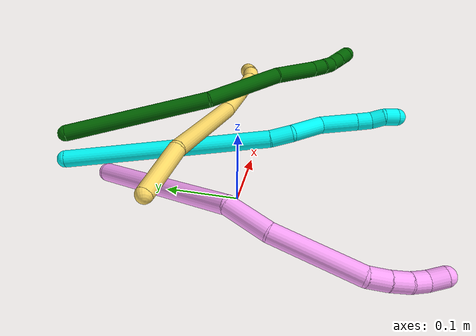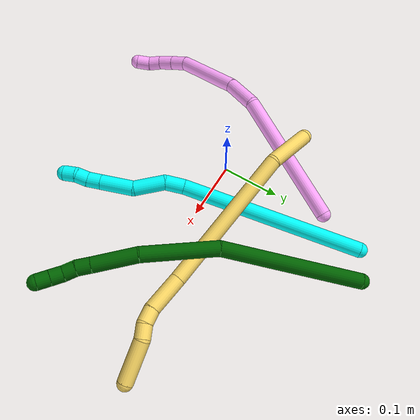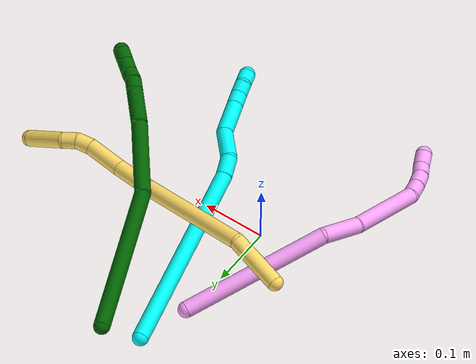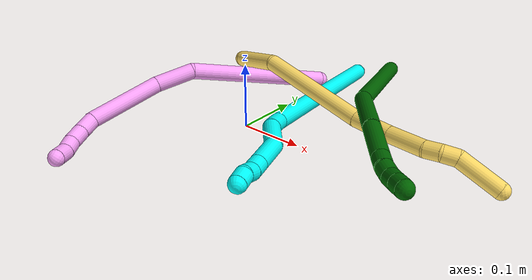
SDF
<sdf version="1.7">
 <world name="default">
  <model name="3">
   <static>0</static>
   <link name="3">
    <collision name="collision-cylinder-e_1_1_4">
     <pose>0.005342 -0.062137 -0.136666 2.71487 0.035568 0.163812</pose>
     <geometry><cylinder><radius>0.0125</radius><length>0.300447</length></cylinder></geometry>
     <surface>
      <friction><ode><mu>1.16</mu><mu2>1.16</mu2><slip1>0</slip1><slip2>0</slip2></ode></friction>
      <contact><ode><kp>1e+06</kp><kd>1</kd><max_vel>0</max_vel><min_depth>0.001</min_depth></ode></contact>
     </surface>
    </collision>
    <visual name="visual-cylinder-e_1_1_4">
     <pose>0.005342 -0.062137 -0.136666 2.71487 0.035568 0.163812</pose>
     <geometry><cylinder><radius>0.0125</radius><length>0.300447</length></cylinder></geometry>
     <material><ambient>0.003922 1 0.996078 1</ambient></material>
    </visual>
    <collision name="collision-cylinder-e_2_4_5">
     <pose>0.013796 -0.129542 -0.28804 2.79768 0.196601 1.03289</pose>
     <geometry><cylinder><radius>0.0125</radius><length>0.031862</length></cylinder></geometry>
     <surface>
      <friction><ode><mu>1.16</mu><mu2>1.16</mu2><slip1>0</slip1><slip2>0</slip2></ode></friction>
      <contact><ode><kp>1e+06</kp><kd>1</kd><max_vel>0</max_vel><min_depth>0.001</min_depth></ode></contact>
     </surface>
    </collision>
    <visual name="visual-cylinder-e_2_4_5">
     <pose>0.013796 -0.129542 -0.28804 2.79768 0.196601 1.03289</pose>
     <geometry><cylinder><radius>0.0125</radius><length>0.031862</length></cylinder></geometry>
     <material><ambient>0.003922 1 0.996078 1</ambient></material>
    </visual>
    <collision name="collision-cylinder-e_3_5_6">
     <pose>0.023759 -0.132637 -0.327478 -3.05394 0.26931 -2.51546</pose>
     <geometry><cylinder><radius>0.0125</radius><length>0.051503</length></cylinder></geometry>
     <surface>
      <friction><ode><mu>1.16</mu><mu2>1.16</mu2><slip1>0</slip1><slip2>0</slip2></ode></friction>
      <contact><ode><kp>1e+06</kp><kd>1</kd><max_vel>0</max_vel><min_depth>0.001</min_depth></ode></contact>
     </surface>
    </collision>
    <visual name="visual-cylinder-e_3_5_6">
     <pose>0.023759 -0.132637 -0.327478 -3.05394 0.26931 -2.51546</pose>
     <geometry><cylinder><radius>0.0125</radius><length>0.051503</length></cylinder></geometry>
     <material><ambient>0.003922 1 0.996078 1</ambient></material>
    </visual>
    <collision name="collision-cylinder-e_4_6_7">
     <pose>0.031999 -0.137829 -0.378173 2.86521 0.051387 0.365434</pose>
     <geometry><cylinder><radius>0.0125</radius><length>0.054053</length></cylinder></geometry>
     <surface>
      <friction><ode><mu>1.16</mu><mu2>1.16</mu2><slip1>0</slip1><slip2>0</slip2></ode></friction>
      <contact><ode><kp>1e+06</kp><kd>1</kd><max_vel>0</max_vel><min_depth>0.001</min_depth></ode></contact>
     </surface>
    </collision>
    <visual name="visual-cylinder-e_4_6_7">
     <pose>0.031999 -0.137829 -0.378173 2.86521 0.051387 0.365434</pose>
     <geometry><cylinder><radius>0.0125</radius><length>0.054053</length></cylinder></geometry>
     <material><ambient>0.003922 1 0.996078 1</ambient></material>
    </visual>
    <collision name="collision-cylinder-e_5_7_8">
     <pose>0.034043 -0.148241 -0.414753 2.86209 0.05932 0.41573</pose>
     <geometry><cylinder><radius>0.0125</radius><length>0.022123</length></cylinder></geometry>
     <surface>
      <friction><ode><mu>1.16</mu><mu2>1.16</mu2><slip1>0</slip1><slip2>0</slip2></ode></friction>
      <contact><ode><kp>1e+06</kp><kd>1</kd><max_vel>0</max_vel><min_depth>0.001</min_depth></ode></contact>
     </surface>
    </collision>
    <visual name="visual-cylinder-e_5_7_8">
     <pose>0.034043 -0.148241 -0.414753 2.86209 0.05932 0.41573</pose>
     <geometry><cylinder><radius>0.0125</radius><length>0.022123</length></cylinder></geometry>
     <material><ambient>0.003922 1 0.996078 1</ambient></material>
    </visual>
    <collision name="collision-cylinder-e_6_8_9">
     <pose>0.036503 -0.156038 -0.433981 2.63761 0.181375 0.679046</pose>
     <geometry><cylinder><radius>0.0125</radius><length>0.020003</length></cylinder></geometry>
     <surface>
      <friction><ode><mu>1.16</mu><mu2>1.16</mu2><slip1>0</slip1><slip2>0</slip2></ode></friction>
      <contact><ode><kp>1e+06</kp><kd>1</kd><max_vel>0</max_vel><min_depth>0.001</min_depth></ode></contact>
     </surface>
    </collision>
    <visual name="visual-cylinder-e_6_8_9">
     <pose>0.036503 -0.156038 -0.433981 2.63761 0.181375 0.679046</pose>
     <geometry><cylinder><radius>0.0125</radius><length>0.020003</length></cylinder></geometry>
     <material><ambient>0.003922 1 0.996078 1</ambient></material>
    </visual>
    <collision name="collision-cylinder-e_7_9_2">
     <pose>0.038039 -0.162867 -0.452377 2.93226 -0.026848 -0.254204</pose>
     <geometry><cylinder><radius>0.0125</radius><length>0.020009</length></cylinder></geometry>
     <surface>
      <friction><ode><mu>1.16</mu><mu2>1.16</mu2><slip1>0</slip1><slip2>0</slip2></ode></friction>
      <contact><ode><kp>1e+06</kp><kd>1</kd><max_vel>0</max_vel><min_depth>0.001</min_depth></ode></contact>
     </surface>
    </collision>
    <visual name="visual-cylinder-e_7_9_2">
     <pose>0.038039 -0.162867 -0.452377 2.93226 -0.026848 -0.254204</pose>
     <geometry><cylinder><radius>0.0125</radius><length>0.020009</length></cylinder></geometry>
     <material><ambient>0.003922 1 0.996078 1</ambient></material>
    </visual>
    <collision name="collision-sphere-2">
     <pose>0.03777 -0.164945 -0.46216 0 -0 0</pose>
     <geometry><sphere><radius>0.0125</radius></sphere></geometry>
     <surface>
      <friction><ode><mu>1.16</mu><mu2>1.16</mu2><slip1>0</slip1><slip2>0</slip2></ode></friction>
      <contact><ode><kp>1e+06</kp><kd>1</kd><max_vel>0</max_vel><min_depth>0.001</min_depth></ode></contact>
     </surface>
    </collision>
    <visual name="visual-sphere-2">
     <pose>0.03777 -0.164945 -0.46216 0 -0 0</pose>
     <geometry><sphere><radius>0.0125</radius></sphere></geometry>
     <material><ambient>0.003922 1 0.996078 1</ambient></material>
    </visual>
    <collision name="collision-sphere-9">
     <pose>0.038307 -0.160789 -0.442595 0 -0 0</pose>
     <geometry><sphere><radius>0.0125</radius></sphere></geometry>
     <surface>
      <friction><ode><mu>1.16</mu><mu2>1.16</mu2><slip1>0</slip1><slip2>0</slip2></ode></friction>
      <contact><ode><kp>1e+06</kp><kd>1</kd><max_vel>0</max_vel><min_depth>0.001</min_depth></ode></contact>
     </surface>
    </collision>
    <visual name="visual-sphere-9">
     <pose>0.038307 -0.160789 -0.442595 0 -0 0</pose>
     <geometry><sphere><radius>0.0125</radius></sphere></geometry>
     <material><ambient>0.003922 1 0.996078 1</ambient></material>
    </visual>
    <collision name="collision-sphere-4">
     <pose>0.010684 -0.124274 -0.273331 0 -0 0</pose>
     <geometry><sphere><radius>0.0125</radius></sphere></geometry>
     <surface>
      <friction><ode><mu>1.16</mu><mu2>1.16</mu2><slip1>0</slip1><slip2>0</slip2></ode></friction>
      <contact><ode><kp>1e+06</kp><kd>1</kd><max_vel>0</max_vel><min_depth>0.001</min_depth></ode></contact>
     </surface>
    </collision>
    <visual name="visual-sphere-4">
     <pose>0.010684 -0.124274 -0.273331 0 -0 0</pose>
     <geometry><sphere><radius>0.0125</radius></sphere></geometry>
     <material><ambient>0.003922 1 0.996078 1</ambient></material>
    </visual>
    <collision name="collision-sphere-1">
     <geometry><sphere><radius>0.0125</radius></sphere></geometry>
     <surface>
      <friction><ode><mu>1.16</mu><mu2>1.16</mu2><slip1>0</slip1><slip2>0</slip2></ode></friction>
      <contact><ode><kp>1e+06</kp><kd>1</kd><max_vel>0</max_vel><min_depth>0.001</min_depth></ode></contact>
     </surface>
    </collision>
    <visual name="visual-sphere-1">
     <geometry><sphere><radius>0.0125</radius></sphere></geometry>
     <material><ambient>0.003922 1 0.996078 1</ambient></material>
    </visual>
    <collision name="collision-sphere-8">
     <pose>0.034699 -0.151287 -0.425366 0 -0 0</pose>
     <geometry><sphere><radius>0.0125</radius></sphere></geometry>
     <surface>
      <friction><ode><mu>1.16</mu><mu2>1.16</mu2><slip1>0</slip1><slip2>0</slip2></ode></friction>
      <contact><ode><kp>1e+06</kp><kd>1</kd><max_vel>0</max_vel><min_depth>0.001</min_depth></ode></contact>
     </surface>
    </collision>
    <visual name="visual-sphere-8">
     <pose>0.034699 -0.151287 -0.425366 0 -0 0</pose>
     <geometry><sphere><radius>0.0125</radius></sphere></geometry>
     <material><ambient>0.003922 1 0.996078 1</ambient></material>
    </visual>
    <collision name="collision-sphere-5">
     <pose>0.016908 -0.13481 -0.30275 0 -0 0</pose>
     <geometry><sphere><radius>0.0125</radius></sphere></geometry>
     <surface>
      <friction><ode><mu>1.16</mu><mu2>1.16</mu2><slip1>0</slip1><slip2>0</slip2></ode></friction>
      <contact><ode><kp>1e+06</kp><kd>1</kd><max_vel>0</max_vel><min_depth>0.001</min_depth></ode></contact>
     </surface>
    </collision>
    <visual name="visual-sphere-5">
     <pose>0.016908 -0.13481 -0.30275 0 -0 0</pose>
     <geometry><sphere><radius>0.0125</radius></sphere></geometry>
     <material><ambient>0.003922 1 0.996078 1</ambient></material>
    </visual>
    <collision name="collision-sphere-6">
     <pose>0.030611 -0.130464 -0.352206 0 -0 0</pose>
     <geometry><sphere><radius>0.0125</radius></sphere></geometry>
     <surface>
      <friction><ode><mu>1.16</mu><mu2>1.16</mu2><slip1>0</slip1><slip2>0</slip2></ode></friction>
      <contact><ode><kp>1e+06</kp><kd>1</kd><max_vel>0</max_vel><min_depth>0.001</min_depth></ode></contact>
     </surface>
    </collision>
    <visual name="visual-sphere-6">
     <pose>0.030611 -0.130464 -0.352206 0 -0 0</pose>
     <geometry><sphere><radius>0.0125</radius></sphere></geometry>
     <material><ambient>0.003922 1 0.996078 1</ambient></material>
    </visual>
    <collision name="collision-sphere-7">
     <pose>0.033387 -0.145195 -0.404139 0 -0 0</pose>
     <geometry><sphere><radius>0.0125</radius></sphere></geometry>
     <surface>
      <friction><ode><mu>1.16</mu><mu2>1.16</mu2><slip1>0</slip1><slip2>0</slip2></ode></friction>
      <contact><ode><kp>1e+06</kp><kd>1</kd><max_vel>0</max_vel><min_depth>0.001</min_depth></ode></contact>
     </surface>
    </collision>
    <visual name="visual-sphere-7">
     <pose>0.033387 -0.145195 -0.404139 0 -0 0</pose>
     <geometry><sphere><radius>0.0125</radius></sphere></geometry>
     <material><ambient>0.003922 1 0.996078 1</ambient></material>
    </visual>
    <inertial>
     <pose>0.014485 -0.093475 -0.228908 0 -0 0</pose>
     <mass>0.5</mass>
     <inertia>
      <ixx>0.002625</ixx>
      <ixy>0</ixy>
      <ixz>0</ixz>
      <iyy>-0.001683</iyy>
      <iyz>0</iyz>
      <izz>0.000823</izz>
     </inertia>
    </inertial>
   </link>
   <pose>0.024566 0.262877 0.0123 -1.28713 -0.881345 0.30374</pose>
  </model>
  <model name="4">
   <static>0</static>
   <link name="4">
    <collision name="collision-cylinder-e_1_1_4">
     <pose>-0.046482 -0.033493 0.097842 0.329816 -0.422413 -0.071332</pose>
     <geometry><cylinder><radius>0.0125</radius><length>0.226764</length></cylinder></geometry>
     <surface>
      <friction><ode><mu>1.16</mu><mu2>1.16</mu2><slip1>0</slip1><slip2>0</slip2></ode></friction>
      <contact><ode><kp>1e+06</kp><kd>1</kd><max_vel>0</max_vel><min_depth>0.001</min_depth></ode></contact>
     </surface>
    </collision>
    <visual name="visual-cylinder-e_1_1_4">
     <pose>-0.046482 -0.033493 0.097842 0.329816 -0.422413 -0.071332</pose>
     <geometry><cylinder><radius>0.0125</radius><length>0.226764</length></cylinder></geometry>
     <material><ambient>1 0.65098 0.996078 1</ambient></material>
    </visual>
    <collision name="collision-cylinder-e_2_4_5">
     <pose>-0.114289 -0.07915 0.213298 0.604353 -0.783494 -0.256135</pose>
     <geometry><cylinder><radius>0.0125</radius><length>0.060429</length></cylinder></geometry>
     <surface>
      <friction><ode><mu>1.16</mu><mu2>1.16</mu2><slip1>0</slip1><slip2>0</slip2></ode></friction>
      <contact><ode><kp>1e+06</kp><kd>1</kd><max_vel>0</max_vel><min_depth>0.001</min_depth></ode></contact>
     </surface>
    </collision>
    <visual name="visual-cylinder-e_2_4_5">
     <pose>-0.114289 -0.07915 0.213298 0.604353 -0.783494 -0.256135</pose>
     <geometry><cylinder><radius>0.0125</radius><length>0.060429</length></cylinder></geometry>
     <material><ambient>1 0.65098 0.996078 1</ambient></material>
    </visual>
    <collision name="collision-cylinder-e_3_5_6">
     <pose>-0.171925 -0.126406 0.258956 0.896594 -0.679799 -0.336931</pose>
     <geometry><cylinder><radius>0.0125</radius><length>0.115526</length></cylinder></geometry>
     <surface>
      <friction><ode><mu>1.16</mu><mu2>1.16</mu2><slip1>0</slip1><slip2>0</slip2></ode></friction>
      <contact><ode><kp>1e+06</kp><kd>1</kd><max_vel>0</max_vel><min_depth>0.001</min_depth></ode></contact>
     </surface>
    </collision>
    <visual name="visual-cylinder-e_3_5_6">
     <pose>-0.171925 -0.126406 0.258956 0.896594 -0.679799 -0.336931</pose>
     <geometry><cylinder><radius>0.0125</radius><length>0.115526</length></cylinder></geometry>
     <material><ambient>1 0.65098 0.996078 1</ambient></material>
    </visual>
    <collision name="collision-cylinder-e_4_6_7">
     <pose>-0.214003 -0.173306 0.290334 1.29552 -0.439359 -0.334745</pose>
     <geometry><cylinder><radius>0.0125</radius><length>0.02711</length></cylinder></geometry>
     <surface>
      <friction><ode><mu>1.16</mu><mu2>1.16</mu2><slip1>0</slip1><slip2>0</slip2></ode></friction>
      <contact><ode><kp>1e+06</kp><kd>1</kd><max_vel>0</max_vel><min_depth>0.001</min_depth></ode></contact>
     </surface>
    </collision>
    <visual name="visual-cylinder-e_4_6_7">
     <pose>-0.214003 -0.173306 0.290334 1.29552 -0.439359 -0.334745</pose>
     <geometry><cylinder><radius>0.0125</radius><length>0.02711</length></cylinder></geometry>
     <material><ambient>1 0.65098 0.996078 1</ambient></material>
    </visual>
    <collision name="collision-cylinder-e_5_7_8">
     <pose>-0.22399 -0.196565 0.296599 1.32031 -0.342986 -0.267316</pose>
     <geometry><cylinder><radius>0.0125</radius><length>0.025107</length></cylinder></geometry>
     <surface>
      <friction><ode><mu>1.16</mu><mu2>1.16</mu2><slip1>0</slip1><slip2>0</slip2></ode></friction>
      <contact><ode><kp>1e+06</kp><kd>1</kd><max_vel>0</max_vel><min_depth>0.001</min_depth></ode></contact>
     </surface>
    </collision>
    <visual name="visual-cylinder-e_5_7_8">
     <pose>-0.22399 -0.196565 0.296599 1.32031 -0.342986 -0.267316</pose>
     <geometry><cylinder><radius>0.0125</radius><length>0.025107</length></cylinder></geometry>
     <material><ambient>1 0.65098 0.996078 1</ambient></material>
    </visual>
    <collision name="collision-cylinder-e_6_8_9">
     <pose>-0.230244 -0.218521 0.300929 1.43835 -0.189493 -0.166038</pose>
     <geometry><cylinder><radius>0.0125</radius><length>0.021577</length></cylinder></geometry>
     <surface>
      <friction><ode><mu>1.16</mu><mu2>1.16</mu2><slip1>0</slip1><slip2>0</slip2></ode></friction>
      <contact><ode><kp>1e+06</kp><kd>1</kd><max_vel>0</max_vel><min_depth>0.001</min_depth></ode></contact>
     </surface>
    </collision>
    <visual name="visual-cylinder-e_6_8_9">
     <pose>-0.230244 -0.218521 0.300929 1.43835 -0.189493 -0.166038</pose>
     <geometry><cylinder><radius>0.0125</radius><length>0.021577</length></cylinder></geometry>
     <material><ambient>1 0.65098 0.996078 1</ambient></material>
    </visual>
    <collision name="collision-cylinder-e_7_9_2">
     <pose>-0.232782 -0.239923 0.306671 1.19164 -0.043016 -0.029168</pose>
     <geometry><cylinder><radius>0.0125</radius><length>0.023486</length></cylinder></geometry>
     <surface>
      <friction><ode><mu>1.16</mu><mu2>1.16</mu2><slip1>0</slip1><slip2>0</slip2></ode></friction>
      <contact><ode><kp>1e+06</kp><kd>1</kd><max_vel>0</max_vel><min_depth>0.001</min_depth></ode></contact>
     </surface>
    </collision>
    <visual name="visual-cylinder-e_7_9_2">
     <pose>-0.232782 -0.239923 0.306671 1.19164 -0.043016 -0.029168</pose>
     <geometry><cylinder><radius>0.0125</radius><length>0.023486</length></cylinder></geometry>
     <material><ambient>1 0.65098 0.996078 1</ambient></material>
    </visual>
    <collision name="collision-sphere-2">
     <pose>-0.233287 -0.250822 0.311013 0 -0 0</pose>
     <geometry><sphere><radius>0.0125</radius></sphere></geometry>
     <surface>
      <friction><ode><mu>1.16</mu><mu2>1.16</mu2><slip1>0</slip1><slip2>0</slip2></ode></friction>
      <contact><ode><kp>1e+06</kp><kd>1</kd><max_vel>0</max_vel><min_depth>0.001</min_depth></ode></contact>
     </surface>
    </collision>
    <visual name="visual-sphere-2">
     <pose>-0.233287 -0.250822 0.311013 0 -0 0</pose>
     <geometry><sphere><radius>0.0125</radius></sphere></geometry>
     <material><ambient>1 0.65098 0.996078 1</ambient></material>
    </visual>
    <collision name="collision-sphere-9">
     <pose>-0.232277 -0.229024 0.302328 0 -0 0</pose>
     <geometry><sphere><radius>0.0125</radius></sphere></geometry>
     <surface>
      <friction><ode><mu>1.16</mu><mu2>1.16</mu2><slip1>0</slip1><slip2>0</slip2></ode></friction>
      <contact><ode><kp>1e+06</kp><kd>1</kd><max_vel>0</max_vel><min_depth>0.001</min_depth></ode></contact>
     </surface>
    </collision>
    <visual name="visual-sphere-9">
     <pose>-0.232277 -0.229024 0.302328 0 -0 0</pose>
     <geometry><sphere><radius>0.0125</radius></sphere></geometry>
     <material><ambient>1 0.65098 0.996078 1</ambient></material>
    </visual>
    <collision name="collision-sphere-4">
     <pose>-0.092965 -0.066986 0.195684 0 -0 0</pose>
     <geometry><sphere><radius>0.0125</radius></sphere></geometry>
     <surface>
      <friction><ode><mu>1.16</mu><mu2>1.16</mu2><slip1>0</slip1><slip2>0</slip2></ode></friction>
      <contact><ode><kp>1e+06</kp><kd>1</kd><max_vel>0</max_vel><min_depth>0.001</min_depth></ode></contact>
     </surface>
    </collision>
    <visual name="visual-sphere-4">
     <pose>-0.092965 -0.066986 0.195684 0 -0 0</pose>
     <geometry><sphere><radius>0.0125</radius></sphere></geometry>
     <material><ambient>1 0.65098 0.996078 1</ambient></material>
    </visual>
    <collision name="collision-sphere-1">
     <geometry><sphere><radius>0.0125</radius></sphere></geometry>
     <surface>
      <friction><ode><mu>1.16</mu><mu2>1.16</mu2><slip1>0</slip1><slip2>0</slip2></ode></friction>
      <contact><ode><kp>1e+06</kp><kd>1</kd><max_vel>0</max_vel><min_depth>0.001</min_depth></ode></contact>
     </surface>
    </collision>
    <visual name="visual-sphere-1">
     <geometry><sphere><radius>0.0125</radius></sphere></geometry>
     <material><ambient>1 0.65098 0.996078 1</ambient></material>
    </visual>
    <collision name="collision-sphere-8">
     <pose>-0.228212 -0.208018 0.29953 0 -0 0</pose>
     <geometry><sphere><radius>0.0125</radius></sphere></geometry>
     <surface>
      <friction><ode><mu>1.16</mu><mu2>1.16</mu2><slip1>0</slip1><slip2>0</slip2></ode></friction>
      <contact><ode><kp>1e+06</kp><kd>1</kd><max_vel>0</max_vel><min_depth>0.001</min_depth></ode></contact>
     </surface>
    </collision>
    <visual name="visual-sphere-8">
     <pose>-0.228212 -0.208018 0.29953 0 -0 0</pose>
     <geometry><sphere><radius>0.0125</radius></sphere></geometry>
     <material><ambient>1 0.65098 0.996078 1</ambient></material>
    </visual>
    <collision name="collision-sphere-5">
     <pose>-0.135613 -0.091313 0.230912 0 -0 0</pose>
     <geometry><sphere><radius>0.0125</radius></sphere></geometry>
     <surface>
      <friction><ode><mu>1.16</mu><mu2>1.16</mu2><slip1>0</slip1><slip2>0</slip2></ode></friction>
      <contact><ode><kp>1e+06</kp><kd>1</kd><max_vel>0</max_vel><min_depth>0.001</min_depth></ode></contact>
     </surface>
    </collision>
    <visual name="visual-sphere-5">
     <pose>-0.135613 -0.091313 0.230912 0 -0 0</pose>
     <geometry><sphere><radius>0.0125</radius></sphere></geometry>
     <material><ambient>1 0.65098 0.996078 1</ambient></material>
    </visual>
    <collision name="collision-sphere-6">
     <pose>-0.208237 -0.1615 0.287 0 -0 0</pose>
     <geometry><sphere><radius>0.0125</radius></sphere></geometry>
     <surface>
      <friction><ode><mu>1.16</mu><mu2>1.16</mu2><slip1>0</slip1><slip2>0</slip2></ode></friction>
      <contact><ode><kp>1e+06</kp><kd>1</kd><max_vel>0</max_vel><min_depth>0.001</min_depth></ode></contact>
     </surface>
    </collision>
    <visual name="visual-sphere-6">
     <pose>-0.208237 -0.1615 0.287 0 -0 0</pose>
     <geometry><sphere><radius>0.0125</radius></sphere></geometry>
     <material><ambient>1 0.65098 0.996078 1</ambient></material>
    </visual>
    <collision name="collision-sphere-7">
     <pose>-0.219769 -0.185112 0.293669 0 -0 0</pose>
     <geometry><sphere><radius>0.0125</radius></sphere></geometry>
     <surface>
      <friction><ode><mu>1.16</mu><mu2>1.16</mu2><slip1>0</slip1><slip2>0</slip2></ode></friction>
      <contact><ode><kp>1e+06</kp><kd>1</kd><max_vel>0</max_vel><min_depth>0.001</min_depth></ode></contact>
     </surface>
    </collision>
    <visual name="visual-sphere-7">
     <pose>-0.219769 -0.185112 0.293669 0 -0 0</pose>
     <geometry><sphere><radius>0.0125</radius></sphere></geometry>
     <material><ambient>1 0.65098 0.996078 1</ambient></material>
    </visual>
    <inertial>
     <pose>-0.118339 -0.093929 0.188012 0 -0 0</pose>
     <mass>0.5</mass>
     <inertia>
      <ixx>0.00089</ixx>
      <ixy>0</ixy>
      <ixz>0</ixz>
      <iyy>0.000933</iyy>
      <iyz>0</iyz>
      <izz>0.000914</izz>
     </inertia>
    </inertial>
   </link>
   <pose>-0.000274 0.185574 0.016441 0.16664 -0.853446 0.621703</pose>
  </model>
  <model name="5">
   <static>0</static>
   <link name="5">
    <collision name="collision-cylinder-e_1_1_4">
     <pose>0.017398 -0.008348 0.037607 0.218444 0.424216 0.047221</pose>
     <geometry><cylinder><radius>0.0125</radius><length>0.084539</length></cylinder></geometry>
     <surface>
      <friction><ode><mu>1.16</mu><mu2>1.16</mu2><slip1>0</slip1><slip2>0</slip2></ode></friction>
      <contact><ode><kp>1e+06</kp><kd>1</kd><max_vel>0</max_vel><min_depth>0.001</min_depth></ode></contact>
     </surface>
    </collision>
    <visual name="visual-cylinder-e_1_1_4">
     <pose>0.017398 -0.008348 0.037607 0.218444 0.424216 0.047221</pose>
     <geometry><cylinder><radius>0.0125</radius><length>0.084539</length></cylinder></geometry>
     <material><ambient>1 0.858824 0.4 1</ambient></material>
    </visual>
    <collision name="collision-cylinder-e_2_4_5">
     <pose>0.086686 -0.001981 0.148794 -0.197395 0.605016 -0.061785</pose>
     <geometry><cylinder><radius>0.0125</radius><length>0.182461</length></cylinder></geometry>
     <surface>
      <friction><ode><mu>1.16</mu><mu2>1.16</mu2><slip1>0</slip1><slip2>0</slip2></ode></friction>
      <contact><ode><kp>1e+06</kp><kd>1</kd><max_vel>0</max_vel><min_depth>0.001</min_depth></ode></contact>
     </surface>
    </collision>
    <visual name="visual-cylinder-e_2_4_5">
     <pose>0.086686 -0.001981 0.148794 -0.197395 0.605016 -0.061785</pose>
     <geometry><cylinder><radius>0.0125</radius><length>0.182461</length></cylinder></geometry>
     <material><ambient>1 0.858824 0.4 1</ambient></material>
    </visual>
    <collision name="collision-cylinder-e_3_5_6">
     <pose>0.153277 0.014903 0.249151 -0.080772 0.500704 -0.020665</pose>
     <geometry><cylinder><radius>0.0125</radius><length>0.06125</length></cylinder></geometry>
     <surface>
      <friction><ode><mu>1.16</mu><mu2>1.16</mu2><slip1>0</slip1><slip2>0</slip2></ode></friction>
      <contact><ode><kp>1e+06</kp><kd>1</kd><max_vel>0</max_vel><min_depth>0.001</min_depth></ode></contact>
     </surface>
    </collision>
    <visual name="visual-cylinder-e_3_5_6">
     <pose>0.153277 0.014903 0.249151 -0.080772 0.500704 -0.020665</pose>
     <geometry><cylinder><radius>0.0125</radius><length>0.06125</length></cylinder></geometry>
     <material><ambient>1 0.858824 0.4 1</ambient></material>
    </visual>
    <collision name="collision-cylinder-e_4_6_7">
     <pose>0.181633 0.017647 0.301977 -0.022156 0.482734 -0.005454</pose>
     <geometry><cylinder><radius>0.0125</radius><length>0.058831</length></cylinder></geometry>
     <surface>
      <friction><ode><mu>1.16</mu><mu2>1.16</mu2><slip1>0</slip1><slip2>0</slip2></ode></friction>
      <contact><ode><kp>1e+06</kp><kd>1</kd><max_vel>0</max_vel><min_depth>0.001</min_depth></ode></contact>
     </surface>
    </collision>
    <visual name="visual-cylinder-e_4_6_7">
     <pose>0.181633 0.017647 0.301977 -0.022156 0.482734 -0.005454</pose>
     <geometry><cylinder><radius>0.0125</radius><length>0.058831</length></cylinder></geometry>
     <material><ambient>1 0.858824 0.4 1</ambient></material>
    </visual>
    <collision name="collision-cylinder-e_5_7_8">
     <pose>0.198356 0.020118 0.339297 -0.166404 0.262246 -0.021995</pose>
     <geometry><cylinder><radius>0.0125</radius><length>0.023671</length></cylinder></geometry>
     <surface>
      <friction><ode><mu>1.16</mu><mu2>1.16</mu2><slip1>0</slip1><slip2>0</slip2></ode></friction>
      <contact><ode><kp>1e+06</kp><kd>1</kd><max_vel>0</max_vel><min_depth>0.001</min_depth></ode></contact>
     </surface>
    </collision>
    <visual name="visual-cylinder-e_5_7_8">
     <pose>0.198356 0.020118 0.339297 -0.166404 0.262246 -0.021995</pose>
     <geometry><cylinder><radius>0.0125</radius><length>0.023671</length></cylinder></geometry>
     <material><ambient>1 0.858824 0.4 1</ambient></material>
    </visual>
    <collision name="collision-cylinder-e_6_8_9">
     <pose>0.202919 0.027436 0.360277 -0.509576 0.133588 -0.034841</pose>
     <geometry><cylinder><radius>0.0125</radius><length>0.022439</length></cylinder></geometry>
     <surface>
      <friction><ode><mu>1.16</mu><mu2>1.16</mu2><slip1>0</slip1><slip2>0</slip2></ode></friction>
      <contact><ode><kp>1e+06</kp><kd>1</kd><max_vel>0</max_vel><min_depth>0.001</min_depth></ode></contact>
     </surface>
    </collision>
    <visual name="visual-cylinder-e_6_8_9">
     <pose>0.202919 0.027436 0.360277 -0.509576 0.133588 -0.034841</pose>
     <geometry><cylinder><radius>0.0125</radius><length>0.022439</length></cylinder></geometry>
     <material><ambient>1 0.858824 0.4 1</ambient></material>
    </visual>
    <collision name="collision-cylinder-e_7_9_2">
     <pose>0.22044 0.049978 0.393775 -0.623705 0.500386 -0.164391</pose>
     <geometry><cylinder><radius>0.0125</radius><length>0.066809</length></cylinder></geometry>
     <surface>
      <friction><ode><mu>1.16</mu><mu2>1.16</mu2><slip1>0</slip1><slip2>0</slip2></ode></friction>
      <contact><ode><kp>1e+06</kp><kd>1</kd><max_vel>0</max_vel><min_depth>0.001</min_depth></ode></contact>
     </surface>
    </collision>
    <visual name="visual-cylinder-e_7_9_2">
     <pose>0.22044 0.049978 0.393775 -0.623705 0.500386 -0.164391</pose>
     <geometry><cylinder><radius>0.0125</radius><length>0.066809</length></cylinder></geometry>
     <material><ambient>1 0.858824 0.4 1</ambient></material>
    </visual>
    <collision name="collision-sphere-2">
     <pose>0.236466 0.067096 0.417566 0 -0 0</pose>
     <geometry><sphere><radius>0.0125</radius></sphere></geometry>
     <surface>
      <friction><ode><mu>1.16</mu><mu2>1.16</mu2><slip1>0</slip1><slip2>0</slip2></ode></friction>
      <contact><ode><kp>1e+06</kp><kd>1</kd><max_vel>0</max_vel><min_depth>0.001</min_depth></ode></contact>
     </surface>
    </collision>
    <visual name="visual-sphere-2">
     <pose>0.236466 0.067096 0.417566 0 -0 0</pose>
     <geometry><sphere><radius>0.0125</radius></sphere></geometry>
     <material><ambient>1 0.858824 0.4 1</ambient></material>
    </visual>
    <collision name="collision-sphere-9">
     <pose>0.204413 0.03286 0.369984 0 -0 0</pose>
     <geometry><sphere><radius>0.0125</radius></sphere></geometry>
     <surface>
      <friction><ode><mu>1.16</mu><mu2>1.16</mu2><slip1>0</slip1><slip2>0</slip2></ode></friction>
      <contact><ode><kp>1e+06</kp><kd>1</kd><max_vel>0</max_vel><min_depth>0.001</min_depth></ode></contact>
     </surface>
    </collision>
    <visual name="visual-sphere-9">
     <pose>0.204413 0.03286 0.369984 0 -0 0</pose>
     <geometry><sphere><radius>0.0125</radius></sphere></geometry>
     <material><ambient>1 0.858824 0.4 1</ambient></material>
    </visual>
    <collision name="collision-sphere-4">
     <pose>0.034797 -0.016697 0.075215 0 -0 0</pose>
     <geometry><sphere><radius>0.0125</radius></sphere></geometry>
     <surface>
      <friction><ode><mu>1.16</mu><mu2>1.16</mu2><slip1>0</slip1><slip2>0</slip2></ode></friction>
      <contact><ode><kp>1e+06</kp><kd>1</kd><max_vel>0</max_vel><min_depth>0.001</min_depth></ode></contact>
     </surface>
    </collision>
    <visual name="visual-sphere-4">
     <pose>0.034797 -0.016697 0.075215 0 -0 0</pose>
     <geometry><sphere><radius>0.0125</radius></sphere></geometry>
     <material><ambient>1 0.858824 0.4 1</ambient></material>
    </visual>
    <collision name="collision-sphere-1">
     <geometry><sphere><radius>0.0125</radius></sphere></geometry>
     <surface>
      <friction><ode><mu>1.16</mu><mu2>1.16</mu2><slip1>0</slip1><slip2>0</slip2></ode></friction>
      <contact><ode><kp>1e+06</kp><kd>1</kd><max_vel>0</max_vel><min_depth>0.001</min_depth></ode></contact>
     </surface>
    </collision>
    <visual name="visual-sphere-1">
     <geometry><sphere><radius>0.0125</radius></sphere></geometry>
     <material><ambient>1 0.858824 0.4 1</ambient></material>
    </visual>
    <collision name="collision-sphere-8">
     <pose>0.201425 0.022011 0.35057 0 -0 0</pose>
     <geometry><sphere><radius>0.0125</radius></sphere></geometry>
     <surface>
      <friction><ode><mu>1.16</mu><mu2>1.16</mu2><slip1>0</slip1><slip2>0</slip2></ode></friction>
      <contact><ode><kp>1e+06</kp><kd>1</kd><max_vel>0</max_vel><min_depth>0.001</min_depth></ode></contact>
     </surface>
    </collision>
    <visual name="visual-sphere-8">
     <pose>0.201425 0.022011 0.35057 0 -0 0</pose>
     <geometry><sphere><radius>0.0125</radius></sphere></geometry>
     <material><ambient>1 0.858824 0.4 1</ambient></material>
    </visual>
    <collision name="collision-sphere-5">
     <pose>0.138576 0.012735 0.222373 0 -0 0</pose>
     <geometry><sphere><radius>0.0125</radius></sphere></geometry>
     <surface>
      <friction><ode><mu>1.16</mu><mu2>1.16</mu2><slip1>0</slip1><slip2>0</slip2></ode></friction>
      <contact><ode><kp>1e+06</kp><kd>1</kd><max_vel>0</max_vel><min_depth>0.001</min_depth></ode></contact>
     </surface>
    </collision>
    <visual name="visual-sphere-5">
     <pose>0.138576 0.012735 0.222373 0 -0 0</pose>
     <geometry><sphere><radius>0.0125</radius></sphere></geometry>
     <material><ambient>1 0.858824 0.4 1</ambient></material>
    </visual>
    <collision name="collision-sphere-6">
     <pose>0.167978 0.01707 0.275929 0 -0 0</pose>
     <geometry><sphere><radius>0.0125</radius></sphere></geometry>
     <surface>
      <friction><ode><mu>1.16</mu><mu2>1.16</mu2><slip1>0</slip1><slip2>0</slip2></ode></friction>
      <contact><ode><kp>1e+06</kp><kd>1</kd><max_vel>0</max_vel><min_depth>0.001</min_depth></ode></contact>
     </surface>
    </collision>
    <visual name="visual-sphere-6">
     <pose>0.167978 0.01707 0.275929 0 -0 0</pose>
     <geometry><sphere><radius>0.0125</radius></sphere></geometry>
     <material><ambient>1 0.858824 0.4 1</ambient></material>
    </visual>
    <collision name="collision-sphere-7">
     <pose>0.195288 0.018225 0.328025 0 -0 0</pose>
     <geometry><sphere><radius>0.0125</radius></sphere></geometry>
     <surface>
      <friction><ode><mu>1.16</mu><mu2>1.16</mu2><slip1>0</slip1><slip2>0</slip2></ode></friction>
      <contact><ode><kp>1e+06</kp><kd>1</kd><max_vel>0</max_vel><min_depth>0.001</min_depth></ode></contact>
     </surface>
    </collision>
    <visual name="visual-sphere-7">
     <pose>0.195288 0.018225 0.328025 0 -0 0</pose>
     <geometry><sphere><radius>0.0125</radius></sphere></geometry>
     <material><ambient>1 0.858824 0.4 1</ambient></material>
    </visual>
    <inertial>
     <pose>0.122675 0.010629 0.211556 0 -0 0</pose>
     <mass>0.5</mass>
     <inertia>
      <ixx>0.000524</ixx>
      <ixy>0</ixy>
      <ixz>0</ixz>
      <iyy>0.000603</iyy>
      <iyz>0</iyz>
      <izz>-0.000404</izz>
     </inertia>
    </inertial>
   </link>
   <pose>-0.093491 0.096458 0.057194 -1.19768 0.540656 -1.10612</pose>
  </model>
  <model name="6">
   <static>0</static>
   <link name="6">
    <collision name="collision-cylinder-e_1_1_4">
     <pose>0.044305 -0.042614 -0.094307 2.71719 0.404508 1.52141</pose>
     <geometry><cylinder><radius>0.0125</radius><length>0.225146</length></cylinder></geometry>
     <surface>
      <friction><ode><mu>1.16</mu><mu2>1.16</mu2><slip1>0</slip1><slip2>0</slip2></ode></friction>
      <contact><ode><kp>1e+06</kp><kd>1</kd><max_vel>0</max_vel><min_depth>0.001</min_depth></ode></contact>
     </surface>
    </collision>
    <visual name="visual-cylinder-e_1_1_4">
     <pose>0.044305 -0.042614 -0.094307 2.71719 0.404508 1.52141</pose>
     <geometry><cylinder><radius>0.0125</radius><length>0.225146</length></cylinder></geometry>
     <material><ambient>0 0.392157 0.003922 1</ambient></material>
    </visual>
    <collision name="collision-cylinder-e_2_4_5">
     <pose>0.098257 -0.098946 -0.247205 2.9116 0.158962 1.20737</pose>
     <geometry><cylinder><radius>0.0125</radius><length>0.121888</length></cylinder></geometry>
     <surface>
      <friction><ode><mu>1.16</mu><mu2>1.16</mu2><slip1>0</slip1><slip2>0</slip2></ode></friction>
      <contact><ode><kp>1e+06</kp><kd>1</kd><max_vel>0</max_vel><min_depth>0.001</min_depth></ode></contact>
     </surface>
    </collision>
    <visual name="visual-cylinder-e_2_4_5">
     <pose>0.098257 -0.098946 -0.247205 2.9116 0.158962 1.20737</pose>
     <geometry><cylinder><radius>0.0125</radius><length>0.121888</length></cylinder></geometry>
     <material><ambient>0 0.392157 0.003922 1</ambient></material>
    </visual>
    <collision name="collision-cylinder-e_3_5_6">
     <pose>0.106698 -0.123783 -0.339043 2.81885 -0.034373 -0.210394</pose>
     <geometry><cylinder><radius>0.0125</radius><length>0.070157</length></cylinder></geometry>
     <surface>
      <friction><ode><mu>1.16</mu><mu2>1.16</mu2><slip1>0</slip1><slip2>0</slip2></ode></friction>
      <contact><ode><kp>1e+06</kp><kd>1</kd><max_vel>0</max_vel><min_depth>0.001</min_depth></ode></contact>
     </surface>
    </collision>
    <visual name="visual-cylinder-e_3_5_6">
     <pose>0.106698 -0.123783 -0.339043 2.81885 -0.034373 -0.210394</pose>
     <geometry><cylinder><radius>0.0125</radius><length>0.070157</length></cylinder></geometry>
     <material><ambient>0 0.392157 0.003922 1</ambient></material>
    </visual>
    <collision name="collision-cylinder-e_4_6_7">
     <pose>0.105499 -0.138048 -0.383028 2.85661 0.000559 0.003898</pose>
     <geometry><cylinder><radius>0.0125</radius><length>0.022376</length></cylinder></geometry>
     <surface>
      <friction><ode><mu>1.16</mu><mu2>1.16</mu2><slip1>0</slip1><slip2>0</slip2></ode></friction>
      <contact><ode><kp>1e+06</kp><kd>1</kd><max_vel>0</max_vel><min_depth>0.001</min_depth></ode></contact>
     </surface>
    </collision>
    <visual name="visual-cylinder-e_4_6_7">
     <pose>0.105499 -0.138048 -0.383028 2.85661 0.000559 0.003898</pose>
     <geometry><cylinder><radius>0.0125</radius><length>0.022376</length></cylinder></geometry>
     <material><ambient>0 0.392157 0.003922 1</ambient></material>
    </visual>
    <collision name="collision-cylinder-e_5_7_8">
     <pose>0.103573 -0.143031 -0.40343 2.95367 -0.193967 -1.60263</pose>
     <geometry><cylinder><radius>0.0125</radius><length>0.020053</length></cylinder></geometry>
     <surface>
      <friction><ode><mu>1.16</mu><mu2>1.16</mu2><slip1>0</slip1><slip2>0</slip2></ode></friction>
      <contact><ode><kp>1e+06</kp><kd>1</kd><max_vel>0</max_vel><min_depth>0.001</min_depth></ode></contact>
     </surface>
    </collision>
    <visual name="visual-cylinder-e_5_7_8">
     <pose>0.103573 -0.143031 -0.40343 2.95367 -0.193967 -1.60263</pose>
     <geometry><cylinder><radius>0.0125</radius><length>0.020053</length></cylinder></geometry>
     <material><ambient>0 0.392157 0.003922 1</ambient></material>
    </visual>
    <collision name="collision-cylinder-e_6_8_9">
     <pose>0.101682 -0.145011 -0.423187 3.12758 0.00415 0.575823</pose>
     <geometry><cylinder><radius>0.0125</radius><length>0.020186</length></cylinder></geometry>
     <surface>
      <friction><ode><mu>1.16</mu><mu2>1.16</mu2><slip1>0</slip1><slip2>0</slip2></ode></friction>
      <contact><ode><kp>1e+06</kp><kd>1</kd><max_vel>0</max_vel><min_depth>0.001</min_depth></ode></contact>
     </surface>
    </collision>
    <visual name="visual-cylinder-e_6_8_9">
     <pose>0.101682 -0.145011 -0.423187 3.12758 0.00415 0.575823</pose>
     <geometry><cylinder><radius>0.0125</radius><length>0.020186</length></cylinder></geometry>
     <material><ambient>0 0.392157 0.003922 1</ambient></material>
    </visual>
    <collision name="collision-cylinder-e_7_9_2">
     <pose>0.101775 -0.14522 -0.443376 3.1349 0.005042 1.29111</pose>
     <geometry><cylinder><radius>0.0125</radius><length>0.020195</length></cylinder></geometry>
     <surface>
      <friction><ode><mu>1.16</mu><mu2>1.16</mu2><slip1>0</slip1><slip2>0</slip2></ode></friction>
      <contact><ode><kp>1e+06</kp><kd>1</kd><max_vel>0</max_vel><min_depth>0.001</min_depth></ode></contact>
     </surface>
    </collision>
    <visual name="visual-cylinder-e_7_9_2">
     <pose>0.101775 -0.14522 -0.443376 3.1349 0.005042 1.29111</pose>
     <geometry><cylinder><radius>0.0125</radius><length>0.020195</length></cylinder></geometry>
     <material><ambient>0 0.392157 0.003922 1</ambient></material>
    </visual>
    <collision name="collision-sphere-2">
     <pose>0.101826 -0.145287 -0.453473 0 -0 0</pose>
     <geometry><sphere><radius>0.0125</radius></sphere></geometry>
     <surface>
      <friction><ode><mu>1.16</mu><mu2>1.16</mu2><slip1>0</slip1><slip2>0</slip2></ode></friction>
      <contact><ode><kp>1e+06</kp><kd>1</kd><max_vel>0</max_vel><min_depth>0.001</min_depth></ode></contact>
     </surface>
    </collision>
    <visual name="visual-sphere-2">
     <pose>0.101826 -0.145287 -0.453473 0 -0 0</pose>
     <geometry><sphere><radius>0.0125</radius></sphere></geometry>
     <material><ambient>0 0.392157 0.003922 1</ambient></material>
    </visual>
    <collision name="collision-sphere-9">
     <pose>0.101724 -0.145152 -0.433279 0 -0 0</pose>
     <geometry><sphere><radius>0.0125</radius></sphere></geometry>
     <surface>
      <friction><ode><mu>1.16</mu><mu2>1.16</mu2><slip1>0</slip1><slip2>0</slip2></ode></friction>
      <contact><ode><kp>1e+06</kp><kd>1</kd><max_vel>0</max_vel><min_depth>0.001</min_depth></ode></contact>
     </surface>
    </collision>
    <visual name="visual-sphere-9">
     <pose>0.101724 -0.145152 -0.433279 0 -0 0</pose>
     <geometry><sphere><radius>0.0125</radius></sphere></geometry>
     <material><ambient>0 0.392157 0.003922 1</ambient></material>
    </visual>
    <collision name="collision-sphere-4">
     <pose>0.08861 -0.085227 -0.188614 0 -0 0</pose>
     <geometry><sphere><radius>0.0125</radius></sphere></geometry>
     <surface>
      <friction><ode><mu>1.16</mu><mu2>1.16</mu2><slip1>0</slip1><slip2>0</slip2></ode></friction>
      <contact><ode><kp>1e+06</kp><kd>1</kd><max_vel>0</max_vel><min_depth>0.001</min_depth></ode></contact>
     </surface>
    </collision>
    <visual name="visual-sphere-4">
     <pose>0.08861 -0.085227 -0.188614 0 -0 0</pose>
     <geometry><sphere><radius>0.0125</radius></sphere></geometry>
     <material><ambient>0 0.392157 0.003922 1</ambient></material>
    </visual>
    <collision name="collision-sphere-1">
     <geometry><sphere><radius>0.0125</radius></sphere></geometry>
     <surface>
      <friction><ode><mu>1.16</mu><mu2>1.16</mu2><slip1>0</slip1><slip2>0</slip2></ode></friction>
      <contact><ode><kp>1e+06</kp><kd>1</kd><max_vel>0</max_vel><min_depth>0.001</min_depth></ode></contact>
     </surface>
    </collision>
    <visual name="visual-sphere-1">
     <geometry><sphere><radius>0.0125</radius></sphere></geometry>
     <material><ambient>0 0.392157 0.003922 1</ambient></material>
    </visual>
    <collision name="collision-sphere-8">
     <pose>0.10164 -0.144869 -0.413095 0 -0 0</pose>
     <geometry><sphere><radius>0.0125</radius></sphere></geometry>
     <surface>
      <friction><ode><mu>1.16</mu><mu2>1.16</mu2><slip1>0</slip1><slip2>0</slip2></ode></friction>
      <contact><ode><kp>1e+06</kp><kd>1</kd><max_vel>0</max_vel><min_depth>0.001</min_depth></ode></contact>
     </surface>
    </collision>
    <visual name="visual-sphere-8">
     <pose>0.10164 -0.144869 -0.413095 0 -0 0</pose>
     <geometry><sphere><radius>0.0125</radius></sphere></geometry>
     <material><ambient>0 0.392157 0.003922 1</ambient></material>
    </visual>
    <collision name="collision-sphere-5">
     <pose>0.107904 -0.112664 -0.305796 0 -0 0</pose>
     <geometry><sphere><radius>0.0125</radius></sphere></geometry>
     <surface>
      <friction><ode><mu>1.16</mu><mu2>1.16</mu2><slip1>0</slip1><slip2>0</slip2></ode></friction>
      <contact><ode><kp>1e+06</kp><kd>1</kd><max_vel>0</max_vel><min_depth>0.001</min_depth></ode></contact>
     </surface>
    </collision>
    <visual name="visual-sphere-5">
     <pose>0.107904 -0.112664 -0.305796 0 -0 0</pose>
     <geometry><sphere><radius>0.0125</radius></sphere></geometry>
     <material><ambient>0 0.392157 0.003922 1</ambient></material>
    </visual>
    <collision name="collision-sphere-6">
     <pose>0.105493 -0.134902 -0.372291 0 -0 0</pose>
     <geometry><sphere><radius>0.0125</radius></sphere></geometry>
     <surface>
      <friction><ode><mu>1.16</mu><mu2>1.16</mu2><slip1>0</slip1><slip2>0</slip2></ode></friction>
      <contact><ode><kp>1e+06</kp><kd>1</kd><max_vel>0</max_vel><min_depth>0.001</min_depth></ode></contact>
     </surface>
    </collision>
    <visual name="visual-sphere-6">
     <pose>0.105493 -0.134902 -0.372291 0 -0 0</pose>
     <geometry><sphere><radius>0.0125</radius></sphere></geometry>
     <material><ambient>0 0.392157 0.003922 1</ambient></material>
    </visual>
    <collision name="collision-sphere-7">
     <pose>0.105505 -0.141193 -0.393765 0 -0 0</pose>
     <geometry><sphere><radius>0.0125</radius></sphere></geometry>
     <surface>
      <friction><ode><mu>1.16</mu><mu2>1.16</mu2><slip1>0</slip1><slip2>0</slip2></ode></friction>
      <contact><ode><kp>1e+06</kp><kd>1</kd><max_vel>0</max_vel><min_depth>0.001</min_depth></ode></contact>
     </surface>
    </collision>
    <visual name="visual-sphere-7">
     <pose>0.105505 -0.141193 -0.393765 0 -0 0</pose>
     <geometry><sphere><radius>0.0125</radius></sphere></geometry>
     <material><ambient>0 0.392157 0.003922 1</ambient></material>
    </visual>
    <inertial>
     <pose>0.075965 -0.084312 -0.218614 0 -0 0</pose>
     <mass>0.5</mass>
     <inertia>
      <ixx>0.00116</ixx>
      <ixy>0</ixy>
      <ixz>0</ixz>
      <iyy>0.001039</iyy>
      <iyz>0</iyz>
      <izz>-2.7e-05</izz>
     </inertia>
    </inertial>
   </link>
   <pose>0.076633 0.285973 0.023614 1.82958 -0.811675 -2.37065</pose>
  </model>
 </world>
</sdf>
